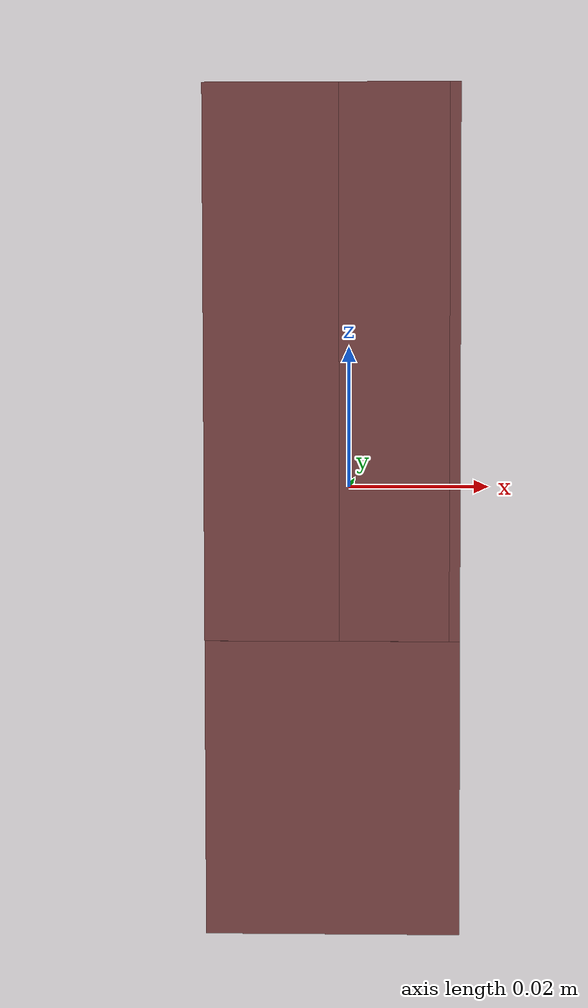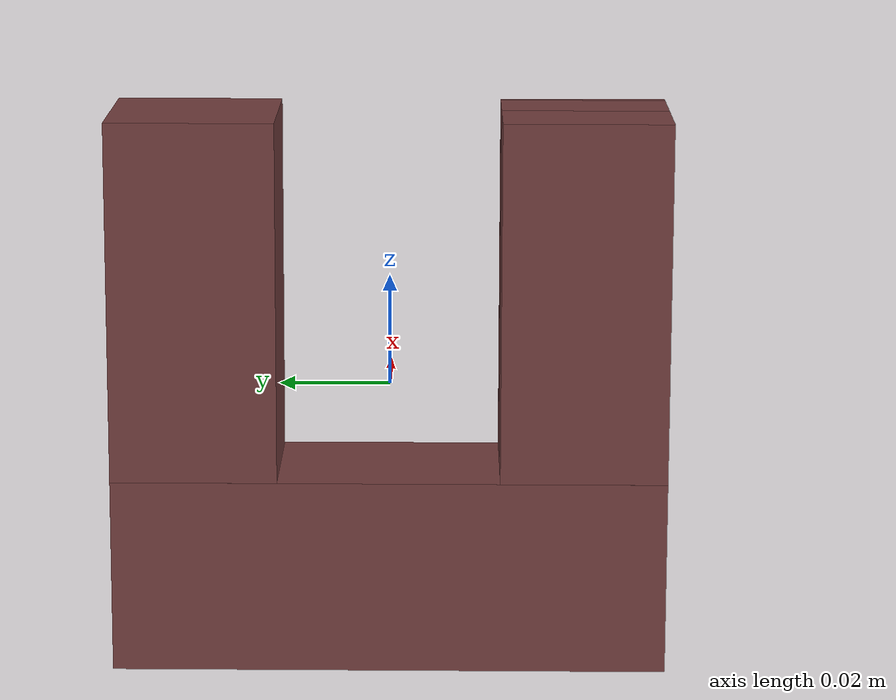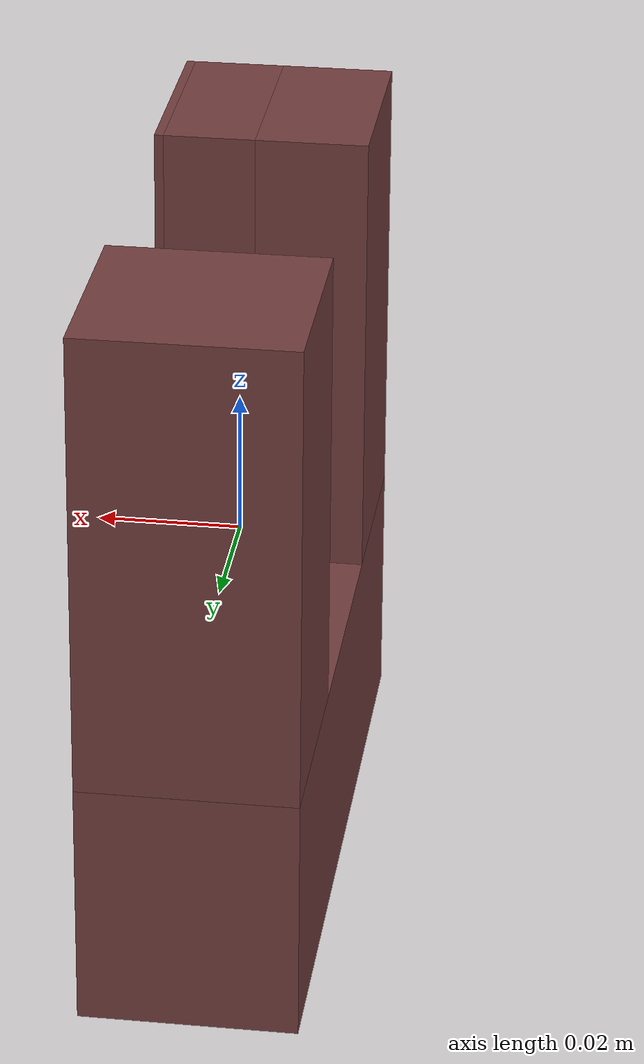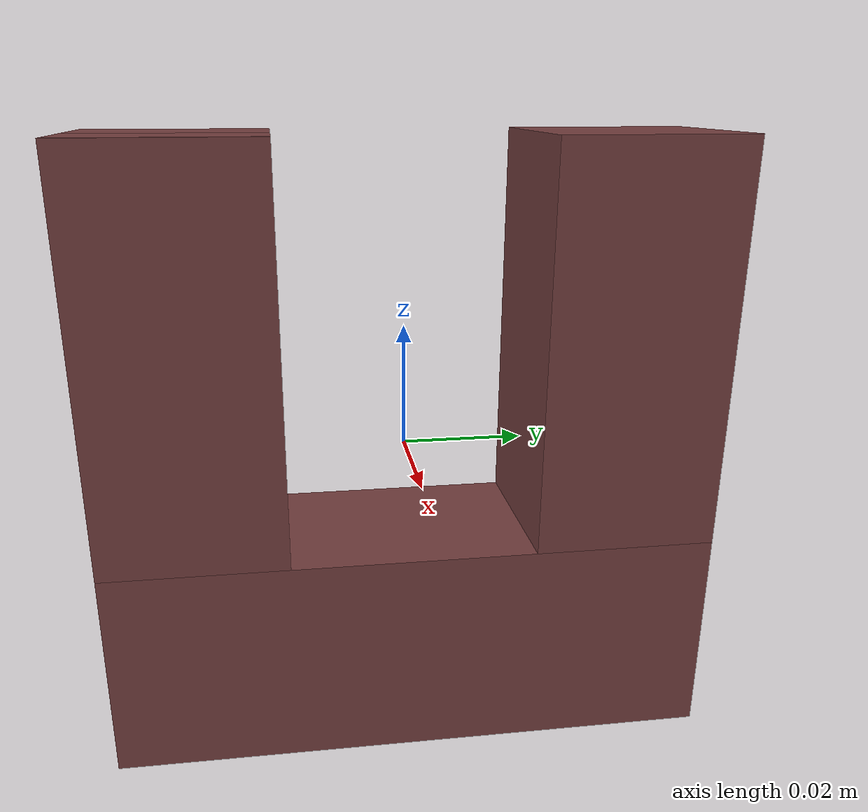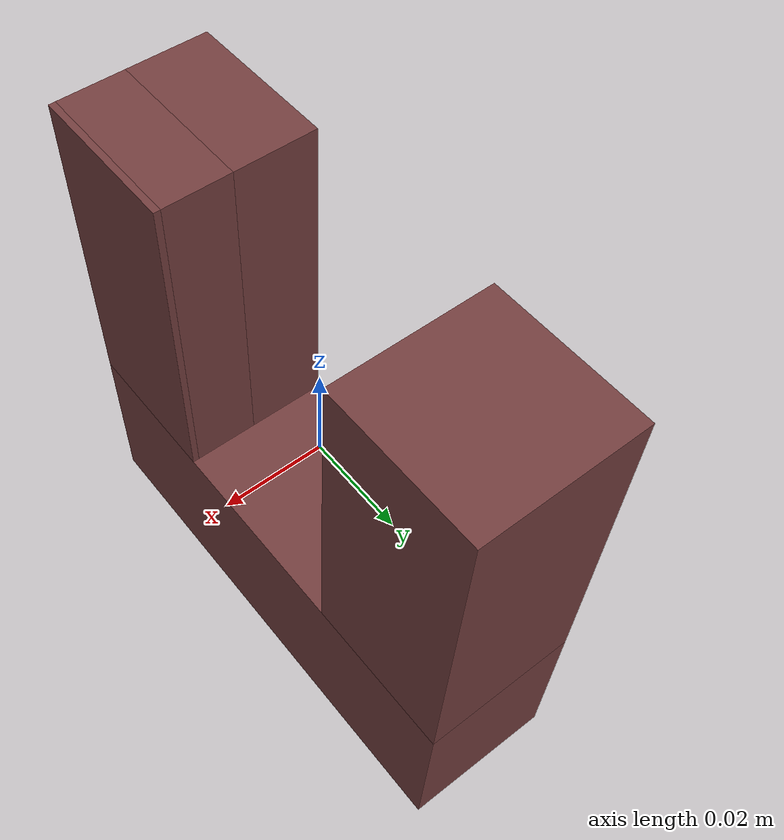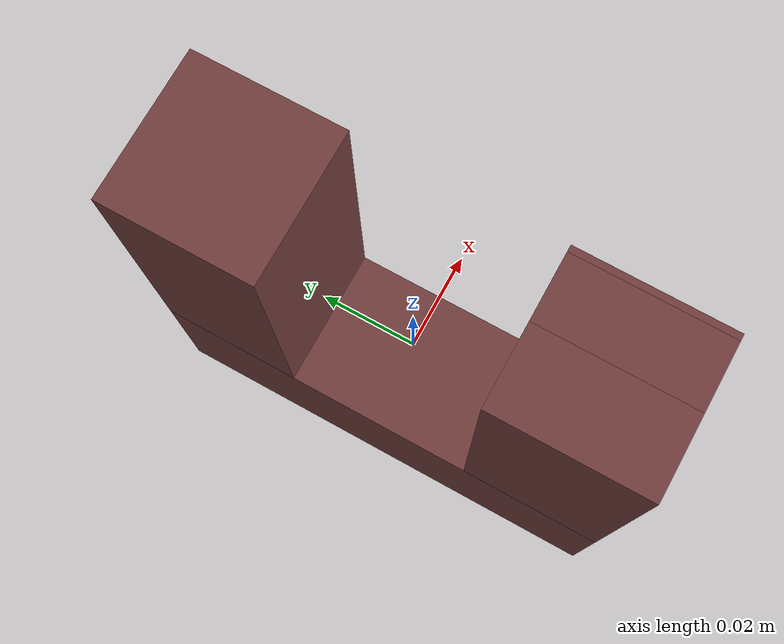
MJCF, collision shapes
<?xml version='1.0' encoding='utf-8'?>
<mujoco model="obj3">
  <asset>
    <mesh name="obj3" file="obj3.obj" scale="0.001 0.001 0.001" />
    <material name="mat5" rgba="0.45098 0.24314 0.24314 1" />
    <mesh name="obj1_p0" file="obj3_part_0.obj" scale="0.001 0.001 0.001" />
    <mesh name="obj1_p1" file="obj3_part_1.obj" scale="0.001 0.001 0.001" />
    <mesh name="obj1_p2" file="obj3_part_2.obj" scale="0.001 0.001 0.001" />
    <mesh name="obj1_p3" file="obj3_part_3.obj" scale="0.001 0.001 0.001" />
    <mesh name="obj1_p4" file="obj3_part_4.obj" scale="0.001 0.001 0.001" />
  </asset>
  <worldbody>
    <body>
      <body name="object">
        <inertial pos="0 0 0" mass="0.1" diaginertia="0.0001 0.0001 0.0001" />
        <geom name="visual" mesh="obj3" type="mesh" group="1" contype="0" conaffinity="0" material="mat5" />
        <geom name="col_0" mesh="obj1_p0" type="mesh" group="0" contype="1" conaffinity="1" friction="0.95 0.3 0.1" solimp="0.9 0.95 0.001" solref="0.02 1" condim="4" material="mat5" />
        <geom name="col_1" mesh="obj1_p1" type="mesh" group="0" contype="1" conaffinity="1" friction="0.95 0.3 0.1" solimp="0.9 0.95 0.001" solref="0.02 1" condim="4" material="mat5" />
        <geom name="col_2" mesh="obj1_p2" type="mesh" group="0" contype="1" conaffinity="1" friction="0.95 0.3 0.1" solimp="0.9 0.95 0.001" solref="0.02 1" condim="4" material="mat5" />
        <geom name="col_3" mesh="obj1_p3" type="mesh" group="0" contype="1" conaffinity="1" friction="0.95 0.3 0.1" solimp="0.9 0.95 0.001" solref="0.02 1" condim="4" material="mat5" />
        <geom name="col_4" mesh="obj1_p4" type="mesh" group="0" contype="1" conaffinity="1" friction="0.95 0.3 0.1" solimp="0.9 0.95 0.001" solref="0.02 1" condim="4" material="mat5" />
      </body>
      <site name="bottom_site" pos="0 0 -0.025" size="0.005" rgba="0 0 0 0" />
      <site name="top_site" pos="0 0 0.025" size="0.005" rgba="0 0 0 0" />
      <site name="horizontal_radius_site" pos="0.03 0.03 0" size="0.005" rgba="0 0 0 0" />
    </body>
  </worldbody>
</mujoco>
